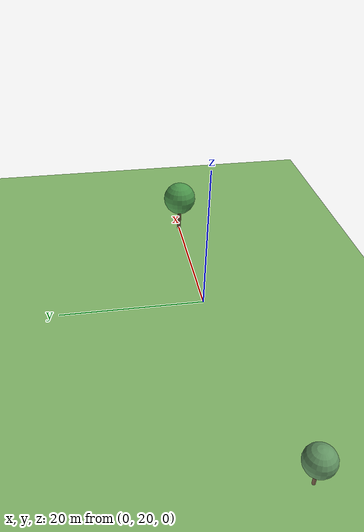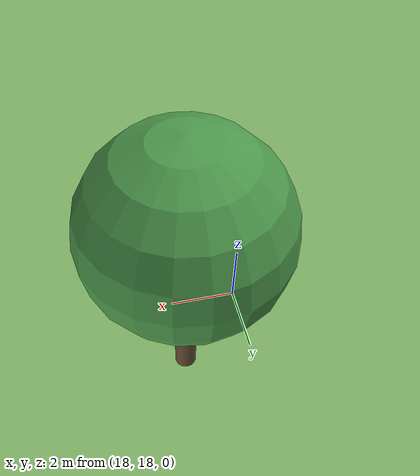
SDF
<sdf version="1.10">
 <world name="test_forest">
  <plugin name="gz::sim::systems::Physics" filename="gz-sim-physics-system"/>
  <plugin name="gz::sim::systems::Sensors" filename="gz-sim-sensors-system">
   <render_engine>ogre2</render_engine>
  </plugin>
  <plugin name="gz::sim::systems::SceneBroadcaster" filename="gz-sim-scene-broadcaster-system"/>
  <plugin name="gz::sim::systems::UserCommands" filename="gz-sim-user-commands-system"/>
  <physics type="ode">
   <max_step_size>0.001</max_step_size>
   <real_time_factor>1.0</real_time_factor>
   <real_time_update_rate>1000</real_time_update_rate>
  </physics>
  <gravity>0 0 -9.81</gravity>
  <model name="ground_plane">
   <static>true</static>
   <link name="link">
    <visual name="visual">
     <geometry><plane><normal>0 0 1</normal><size>200 200</size></plane></geometry>
     <material><ambient>0.4 0.6 0.3 1</ambient><diffuse>0.5 0.7 0.4 1</diffuse></material>
    </visual>
    <collision name="collision">
     <geometry><plane><normal>0 0 1</normal><size>200 200</size></plane></geometry>
    </collision>
   </link>
  </model>
  <scene><ambient>0.6 0.6 0.5 1</ambient><background>0.7 0.8 1.0 1</background><shadows>true</shadows></scene>
  <light type="directional" name="sun">
   <pose>100 100 50 0 0 0</pose>
   <diffuse>1.0 0.95 0.8 1</diffuse>
   <direction>-1 -1 -1</direction>
  </light>
  <model name="tree_1">
   <static>true</static>
   <pose>20 20 0 0 0 0</pose>
   <link name="trunk">
    <pose>0 0 2 0 0 0</pose>
    <visual name="trunk_visual">
     <geometry><cylinder><radius>0.3</radius><length>4</length></cylinder></geometry>
     <material><ambient>0.4 0.3 0.2 1</ambient><diffuse>0.4 0.3 0.2 1</diffuse></material>
    </visual>
    <collision name="trunk_collision">
     <geometry><cylinder><radius>0.3</radius><length>4</length></cylinder></geometry>
    </collision>
   </link>
   <link name="crown">
    <pose>0 0 5.5 0 0 0</pose>
    <visual name="crown_visual">
     <geometry><sphere><radius>2.5</radius></sphere></geometry>
     <material><ambient>0.2 0.5 0.2 1</ambient><diffuse>0.3 0.6 0.3 1</diffuse></material>
    </visual>
    <collision name="crown_collision"><geometry><sphere><radius>2.0</radius></sphere></geometry></collision>
   </link>
   <joint name="trunk_crown_joint" type="fixed"><parent>trunk</parent><child>crown</child></joint>
  </model>
  <model name="tree_2">
   <static>true</static>
   <pose>-30 15 0 0 0 0</pose>
   <link name="trunk">
    <pose>0 0 1.5 0 0 0</pose>
    <visual name="trunk_visual">
     <geometry><cylinder><radius>0.2</radius><length>3</length></cylinder></geometry>
     <material><ambient>0.5 0.4 0.3 1</ambient><diffuse>0.5 0.4 0.3 1</diffuse></material>
    </visual>
    <collision name="trunk_collision">
     <geometry><cylinder><radius>0.2</radius><length>3</length></cylinder></geometry>
    </collision>
   </link>
   <link name="crown">
    <pose>0 0 3.8 0 0 0</pose>
    <visual name="crown_visual">
     <geometry><sphere><radius>1.8</radius></sphere></geometry>
     <material><ambient>0.3 0.5 0.3 1</ambient><diffuse>0.4 0.6 0.4 1</diffuse></material>
    </visual>
    <collision name="crown_collision"><geometry><sphere><radius>1.5</radius></sphere></geometry></collision>
   </link>
   <joint name="trunk_crown_joint" type="fixed"><parent>trunk</parent><child>crown</child></joint>
  </model>
 </world>
</sdf>
